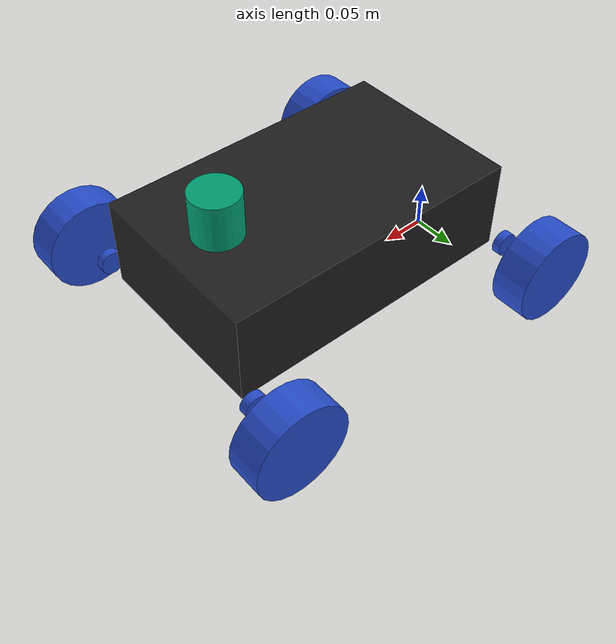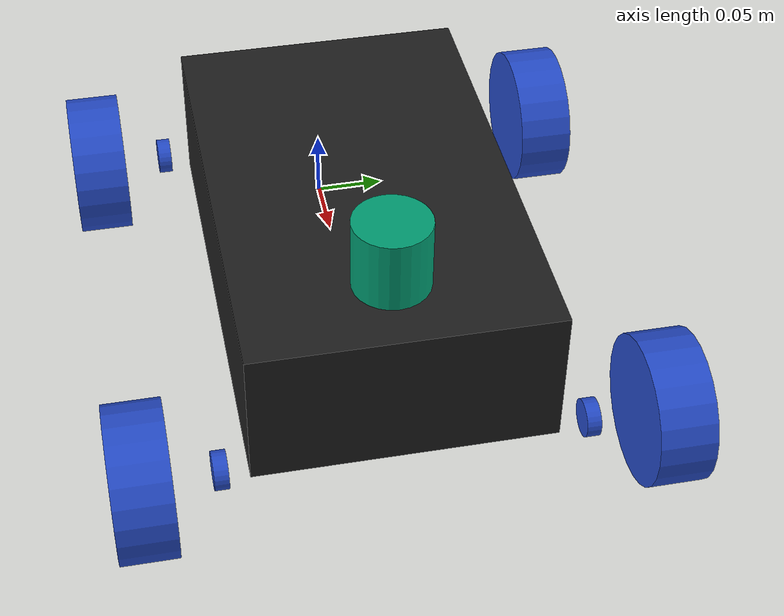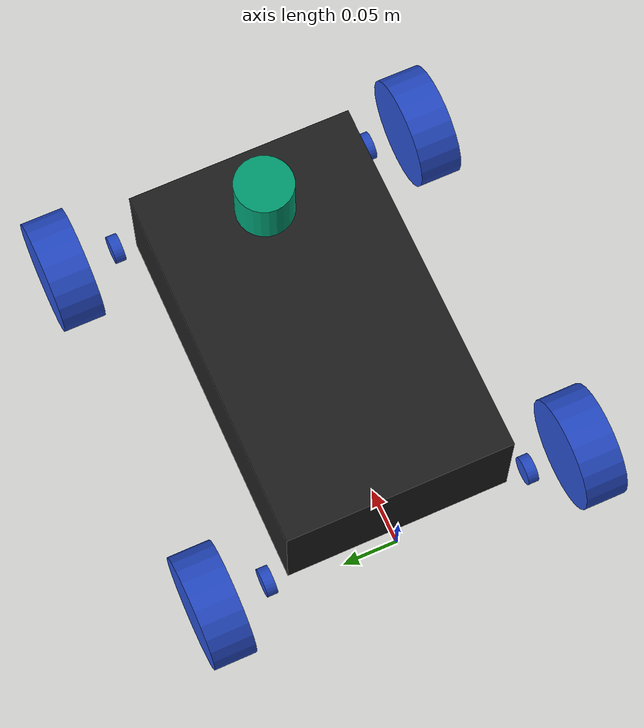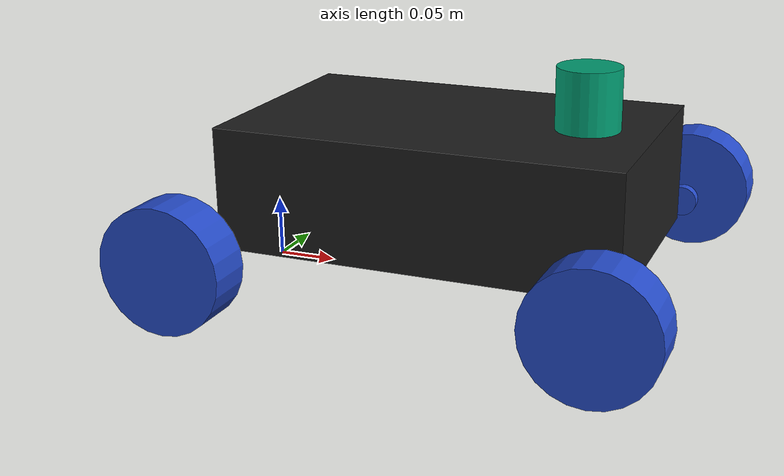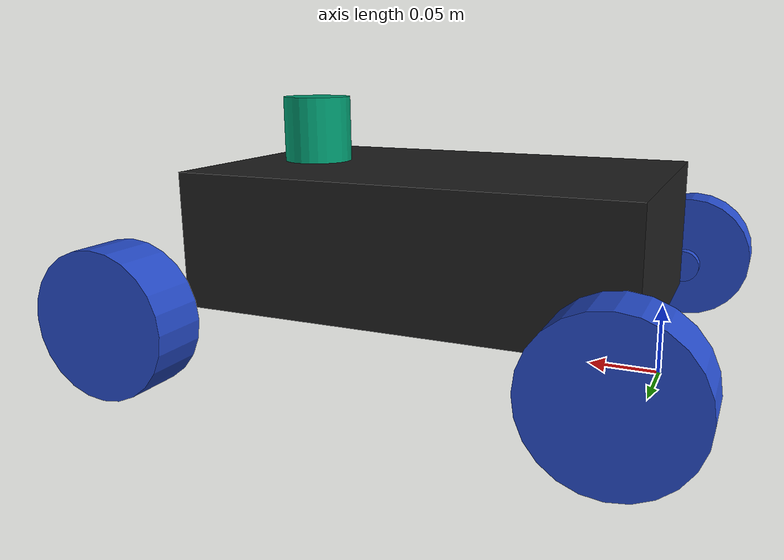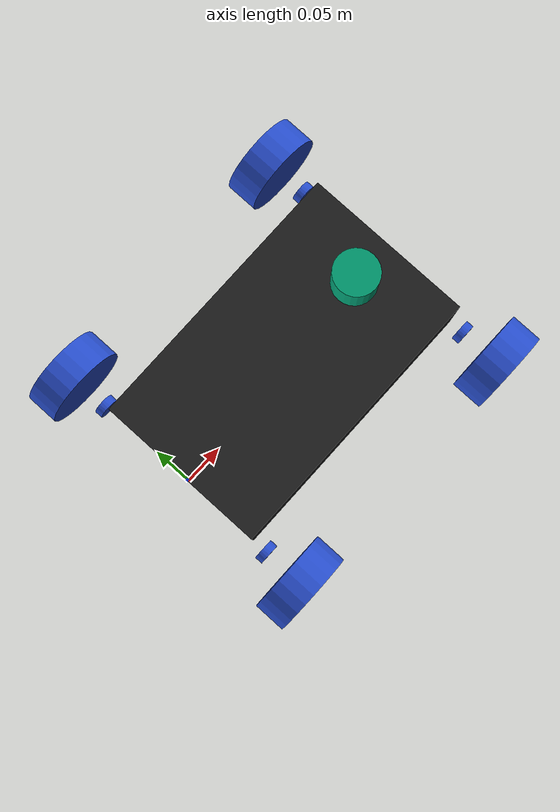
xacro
<?xml version="1.0"?>

<!-- A simple model of the racecar for rviz -->

<robot xmlns:xacro="http://www.ros.org/wiki/xacro" name="racecar">

  <xacro:property name="wheelbase" value="0.3302" />
  <xacro:property name="width" value="0.2032" />
  <xacro:property name="height" value="0.1" />
  <xacro:property name="ground_offset" value="0.04" />
  <xacro:property name="wheel_radius" value="0.0508" />
  <xacro:property name="wheel_length" value="0.0381" />
  <xacro:property name="laser_distance_from_body" value="0.275" />
  <xacro:property name="laser_height" value="0.05" />
  <xacro:property name="laser_radius" value="0.026" />
  <xacro:property name="car_name" value="ego_racecar" />
  <xacro:include filename="inertial_macros.xacro" />

  <material name="white">
    <color rgba="1 1 1 1" />
  </material>

  <material name="orange">
    <color rgba="1 0.3 0.1 1" />
  </material>

  <material name="blue">
    <color rgba="0.2 0.2 1 1" />
  </material>

  <material name="black">
    <color rgba="0 0 0 1" />
  </material>

  <link name="base_link">

  </link>

  <!-- BASE -->

  <link name="ego_racecar/body">
    <visual>
      <origin xyz="${wheelbase/2} 0 ${ground_offset+height/2}" />
      <geometry>
        <box size="${wheelbase} ${width} ${height}" />
      </geometry>
    </visual>
    <collision>
      <origin xyz="${wheelbase/2} 0 ${ground_offset+height/2}" />
      <geometry>
        <box size="${wheelbase} ${width} ${height}" />
      </geometry>
    </collision>
    <xacro:inertial_box mass="0.5" x="${wheelbase}" y="${width}" z="${height}">
      <origin xyz="${wheelbase} ${width} ${height}" rpy="0 0 0" />
    </xacro:inertial_box>
  </link>

  <gazebo reference="ego_racecar/body">
    <material>Gazebo/black</material>
  </gazebo>

  <joint name="base_to_body" type="fixed">
    <parent link="base_link" />
    <child link="ego_racecar/body" />
  </joint>

  <!-- LASER -->

  <link name="ego_racecar/laser_model">
    <visual>
      <geometry>
        <cylinder radius="${laser_radius}" length="${laser_height}" />
      </geometry>
    </visual>
    <collision>
      <geometry>
        <cylinder radius="${laser_radius}" length="${laser_height}" />
      </geometry>
    </collision>
    <xacro:inertial_cylinder mass="0.1" radius="${laser_radius}" length="${laser_height}">
      <origin xyz="0 0 0" rpy="0 0 0" />
    </xacro:inertial_cylinder>
  </link>

  <gazebo reference="ego_racecar/back_right_wheel">
    <material>Gazebo/black</material>
  </gazebo>

  <joint name="base_to_laser_model" type="fixed">
    <parent link="ego_racecar/body" />
    <child link="ego_racecar/laser_model" />
    <origin xyz="${laser_distance_from_body} 0 ${ground_offset+height+(laser_height/2)}" />
  </joint>

  <!-- BACK RIGHT WHEEL -->

  <link name="ego_racecar/back_right_hinge">
    <visual>
      <geometry>
        <cylinder radius="${wheel_radius/4}" length="${wheel_length/4}" />
      </geometry>
      <origin rpy="-${pi/2} 0 0" />
    </visual>
    <collision>
      <geometry>
        <cylinder radius="${wheel_radius/4}" length="${wheel_length/4}" />
      </geometry>
      <origin rpy="-${pi/2} 0 0" />
    </collision>
    <xacro:inertial_cylinder mass="0.1" radius="${wheel_radius}" length="${wheel_length}">
      <origin xyz="0 0 0" rpy="0 0 0" />
    </xacro:inertial_cylinder>
  </link>

  <gazebo reference="ego_racecar/back_right_hinge">
    <material>Gazebo/Blue</material>
  </gazebo>

  <link name="ego_racecar/back_right_wheel">
    <visual>
      <geometry>
        <cylinder radius="${wheel_radius}" length="${wheel_length}" />
      </geometry>
      <origin rpy="${pi/2} 0 0" />
    </visual>
    <collision>
      <geometry>
        <cylinder radius="${wheel_radius}" length="${wheel_length}" />
      </geometry>
      <origin rpy="${pi/2} 0 0" />
    </collision>
    <xacro:inertial_cylinder mass="0.1" radius="${wheel_radius}" length="${wheel_length}">
      <origin xyz="0 0 0" rpy="0 0 0" />
    </xacro:inertial_cylinder>
  </link>

  <gazebo reference="ego_racecar/back_right_wheel">
    <material>Gazebo/Blue</material>
  </gazebo>

  <joint name="back_right_hinge_to_wheel" type="continuous">
    <parent link="ego_racecar/back_right_hinge" />
    <child link="ego_racecar/back_right_wheel" />
    <origin xyz="0 -0.05 0" rpy="0 0 0" />
    <axis xyz="0 1 0" />
  </joint>

  <joint name="base_to_back_right_wheel" type="fixed">
    <parent link="ego_racecar/body" />
    <child link="ego_racecar/back_right_hinge" />
    <origin xyz="0 ${-(wheel_length+width)/2} ${wheel_radius}" rpy="0 0 0" />
  </joint>

  <!-- BACK LEFT WHEEL -->

  <link name="ego_racecar/back_left_hinge">
    <visual>
      <geometry>
        <cylinder radius="${wheel_radius/4}" length="${wheel_length/4}" />
      </geometry>
      <origin rpy="${pi/2} 0 0" />
    </visual>
    <collision>
      <geometry>
        <cylinder radius="${wheel_radius/4}" length="${wheel_length/4}" />
      </geometry>
      <origin rpy="${pi/2} 0 0" />
    </collision>
    <xacro:inertial_cylinder mass="0.1" radius="${wheel_radius}" length="${wheel_length}">
      <origin xyz="0 0 0" rpy="0 0 0" />
    </xacro:inertial_cylinder>
  </link>

  <gazebo reference="ego_racecar/back_left_hinge">
    <material>Gazebo/Blue</material>
  </gazebo>

  <link name="ego_racecar/back_left_wheel">
    <visual>
      <geometry>
        <cylinder radius="${wheel_radius}" length="${wheel_length}" />
      </geometry>
      <origin rpy="-${pi/2} 0 0" />
    </visual>
    <collision>
      <geometry>
        <cylinder radius="${wheel_radius}" length="${wheel_length}" />
      </geometry>
      <origin rpy="-${pi/2} 0 0" />
    </collision>
    <xacro:inertial_cylinder mass="0.1" radius="${wheel_radius}" length="${wheel_length}">
      <origin xyz="0 0 0" rpy="0 0 0" />
    </xacro:inertial_cylinder>
  </link>

  <joint name="back_left_hinge_to_wheel" type="continuous">
    <parent link="ego_racecar/back_left_hinge" />
    <child link="ego_racecar/back_left_wheel" />
    <origin xyz="0 0.05 0" rpy="0 0 0" />
    <axis xyz="0 1 0" />
  </joint>

  <gazebo reference="ego_racecar/back_left_wheel">
    <material>Gazebo/Blue</material>
  </gazebo>

  <joint name="base_to_back_left_wheel" type="fixed">
    <parent link="ego_racecar/body" />
    <child link="ego_racecar/back_left_hinge" />
    <origin xyz="0 ${(wheel_length+width)/2} ${wheel_radius}" rpy="0 0 0" />
  </joint>

  <!-- FRONT RIGHT HINGE -->
  <link name="ego_racecar/front_right_hinge">
    <visual>
      <geometry>
        <cylinder radius="${wheel_radius/4}" length="${wheel_length/4}" />
      </geometry>
      <origin rpy="-${pi/2} 0 0" />
    </visual>
    <collision>
      <geometry>
        <cylinder radius="${wheel_radius/4}" length="${wheel_length/4}" />
      </geometry>
      <origin rpy="-${pi/2} 0 0" />
    </collision>
    <xacro:inertial_cylinder mass="0.1" radius="${wheel_radius}" length="${wheel_length}">
      <origin xyz="0 0 0" rpy="0 0 0" />
    </xacro:inertial_cylinder>
  </link>

  <gazebo reference="ego_racecar/front_right_hinge">
    <material>Gazebo/Blue</material>
  </gazebo>

  <joint name="base_to_front_right_hinge" type="revolute">
    <parent link="ego_racecar/body" />
    <child link="ego_racecar/front_right_hinge" />
    <origin xyz="${wheelbase} ${-(wheel_length+width)/2} ${wheel_radius}" />
    <axis xyz="0 0 1" />
    <limit effort="100" velocity="1" lower="-1" upper="1" />
  </joint>

  <!-- FRONT RIGHT WHEEL -->

  <link name="ego_racecar/front_right_wheel">
    <visual>
      <geometry>
        <cylinder radius="${wheel_radius}" length="${wheel_length}" />
      </geometry>
      <origin rpy="-${pi/2} 0 0" />
    </visual>
    <collision>
      <geometry>
        <cylinder radius="${wheel_radius}" length="${wheel_length}" />
      </geometry>
      <origin rpy="-${pi/2} 0 0" />
    </collision>
    <xacro:inertial_cylinder mass="0.1" radius="${wheel_radius}" length="${wheel_length}">
      <origin xyz="0 0 0" rpy="0 0 0" />
    </xacro:inertial_cylinder>
  </link>

  <gazebo reference="ego_racecar/front_right_wheel">
    <material>Gazebo/Blue</material>
  </gazebo>

  <joint name="front_right_hinge_to_wheel" type="continuous">
    <parent link="ego_racecar/front_right_hinge" />
    <child link="ego_racecar/front_right_wheel" />
    <origin xyz="0 -0.05 0" rpy="0 0 0" />
    <axis xyz="0 1 0" />
  </joint>

  <link name="ego_racecar/front_left_hinge">
    <visual>
      <geometry>
        <cylinder radius="${wheel_radius/4}" length="${wheel_length/4}" />
      </geometry>
      <origin rpy="${pi/2} 0 0" />
    </visual>
    <collision>
      <geometry>
        <cylinder radius="${wheel_radius/4}" length="${wheel_length/4}" />
      </geometry>
      <origin rpy="${pi/2} 0 0" />
    </collision>
    <xacro:inertial_cylinder mass="0.1" radius="${wheel_radius}" length="${wheel_length}">
      <origin xyz="0 0 0" rpy="0 0 0" />
    </xacro:inertial_cylinder>
  </link>

  <gazebo reference="ego_racecar/front_left_hinge">
    <material>Gazebo/Blue</material>
  </gazebo>

  <!-- FRONT LEFT HINGE -->
  <joint name="base_to_front_left_hinge" type="revolute">
    <parent link="ego_racecar/body" />
    <child link="ego_racecar/front_left_hinge" />
    <origin xyz="${wheelbase} ${(wheel_length+width)/2} ${wheel_radius}" />
    <axis xyz="0 0 1" />
    <limit effort="100" velocity="1" lower="-1" upper="1" />
  </joint>

  <!-- FRONT LEFT WHEEL -->

  <link name="ego_racecar/front_left_wheel">
    <visual>
      <geometry>
        <cylinder radius="${wheel_radius}" length="${wheel_length}" />
      </geometry>
      <origin xyz="0 0 0" rpy="${pi/2} 0 0" />
    </visual>
    <collision>
      <geometry>
        <cylinder radius="${wheel_radius}" length="${wheel_length}" />
      </geometry>
      <origin rpy="${pi/2} 0 0" />
    </collision>
    <xacro:inertial_cylinder mass="0.1" radius="${wheel_radius}" length="${wheel_length}">
      <origin xyz="0 0 0" rpy="0 0 0" />
    </xacro:inertial_cylinder>
  </link>

  <gazebo reference="ego_racecar/front_left_wheel">
    <material>Gazebo/Blue</material>
  </gazebo>

  <joint name="front_left_hinge_to_wheel" type="continuous">
    <parent link="ego_racecar/front_left_hinge" />
    <child link="ego_racecar/front_left_wheel" />
    <origin xyz="0 0.05 0" />
    <axis xyz="0 1 0" />
  </joint>

  <gazebo>

    <plugin name='gazebo_ros_ackermann_drive' filename='libgazebo_ros_ackermann_drive.so'>

      <ros>
        <parameter name="cmd_vel_topic" value="cmd_demo" />
        <parameter name="odom_topic" value="odom_demo" />
        <parameter name="distance_topic" value="distance_demo" />
      </ros>

      <update_rate>100.0</update_rate>

      <!-- wheels -->
      <front_left_joint>front_left_hinge_to_wheel</front_left_joint>
      <front_right_joint>front_right_hinge_to_wheel</front_right_joint>
      <rear_left_joint>back_left_hinge_to_wheel</rear_left_joint>
      <rear_right_joint>back_right_hinge_to_wheel</rear_right_joint>
      <left_steering_joint>base_to_front_left_hinge</left_steering_joint>
      <right_steering_joint>base_to_front_right_hinge</right_steering_joint>
      <steering_wheel_joint>steering_joint</steering_wheel_joint>

      <!-- Max absolute steer angle for tyre in radians-->
      <!-- Any cmd_vel angular z greater than this would be capped -->
      <max_steer>0.6458</max_steer>

      <!-- Max absolute steering angle of steering wheel -->
      <max_steering_angle>7.85</max_steering_angle>

      <!-- Max absolute linear speed in m/s -->
      <max_speed>20</max_speed>

      <!-- PID tuning -->
      <left_steering_pid_gain>1500 0 1</left_steering_pid_gain>
      <left_steering_i_range>0 0</left_steering_i_range>
      <right_steering_pid_gain>1500 0 1</right_steering_pid_gain>
      <right_steering_i_range>0 0</right_steering_i_range>
      <linear_velocity_pid_gain>1000 0 1</linear_velocity_pid_gain>
      <linear_velocity_i_range>0 0</linear_velocity_i_range>

      <!-- output -->
      <publish_odom>true</publish_odom>
      <publish_odom_tf>true</publish_odom_tf>
      <publish_wheel_tf>true</publish_wheel_tf>
      <publish_distance>true</publish_distance>

      <odometry_frame>odom</odometry_frame>
      <robot_base_frame>base_link</robot_base_frame>

    </plugin>
  </gazebo>

</robot>
